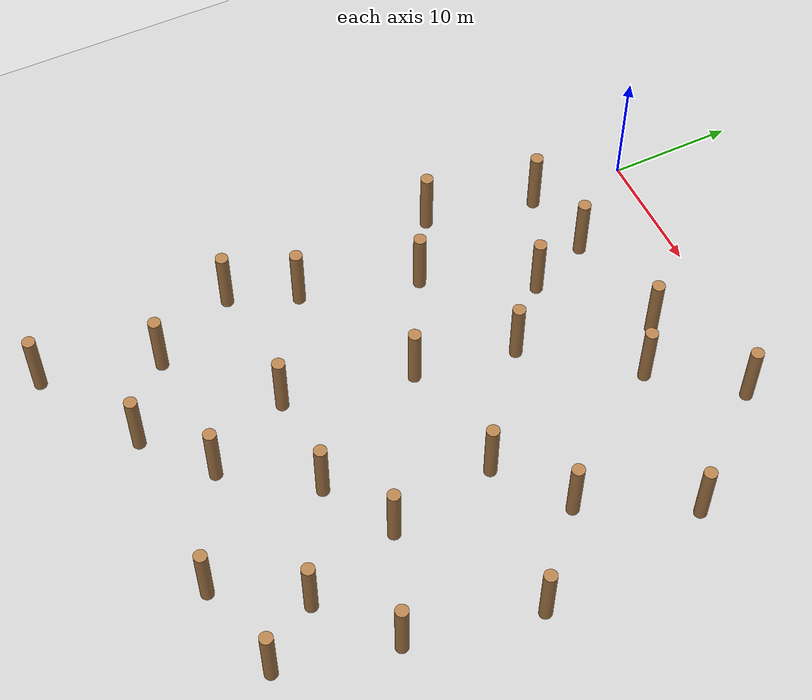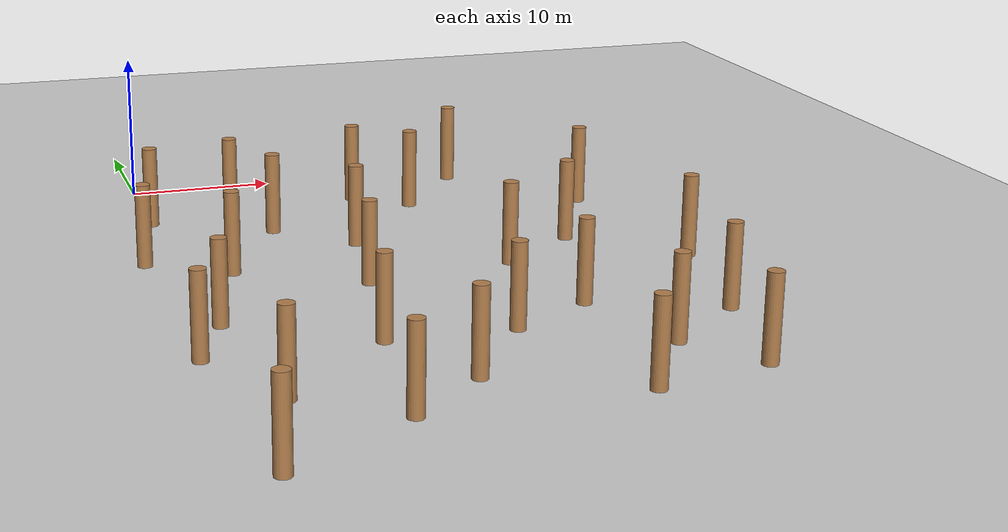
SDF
<sdf version="1.6">
 <world name="default">
  <model name="ground_plane">
   <static>1</static>
   <link name="link">
    <collision name="collision">
     <geometry><plane><normal>0 0 1</normal><size>100 100</size></plane></geometry>
     <surface><friction><ode><mu>100</mu><mu2>50</mu2></ode></friction></surface>
    </collision>
    <visual name="visual">
     <cast_shadows>0</cast_shadows>
     <geometry><plane><normal>0 0 1</normal><size>100 100</size></plane></geometry>
     <material>
      <script><uri>file://media/materials/scripts/gazebo.material</uri><name>Gazebo/Grey</name></script>
     </material>
    </visual>
   </link>
  </model>
  <model name="WoodPillars_8">
   <link name="link_clone_31">
    <inertial>
     <mass>1</mass>
     <inertia><ixx>0.145833</ixx><ixy>0</ixy><ixz>0</ixz><iyy>0.145833</iyy><iyz>0</iyz><izz>0.125</izz></inertia>
    </inertial>
    <pose>-1.44135 19.9016 0 0 -0 -0.001289</pose>
    <visual name="visual">
     <geometry><cylinder><radius>0.5</radius><length>5.50507</length></cylinder></geometry>
     <material>
      <script><name>Gazebo/Wood</name><uri>file://media/materials/scripts/gazebo.material</uri></script>
      <shader type="pixel"/>
     </material>
    </visual>
    <collision name="collision">
     <geometry><cylinder><radius>0.5</radius><length>5.50507</length></cylinder></geometry>
     <surface>
      <friction>
       <ode><mu>1</mu><mu2>1</mu2><fdir1>0 0 0</fdir1><slip1>0</slip1><slip2>0</slip2></ode>
       <torsional>
        <coefficient>1</coefficient>
        <patch_radius>0</patch_radius>
        <surface_radius>0</surface_radius>
        <use_patch_radius>1</use_patch_radius>
        <ode><slip>0</slip></ode>
       </torsional>
      </friction>
      <bounce><restitution_coefficient>0</restitution_coefficient><threshold>1e+06</threshold></bounce>
      <contact>
       <collide_without_contact>0</collide_without_contact>
       <collide_without_contact_bitmask>1</collide_without_contact_bitmask>
       <collide_bitmask>1</collide_bitmask>
       <ode>
        <soft_cfm>0</soft_cfm>
        <soft_erp>0.2</soft_erp>
        <kp>1e+13</kp>
        <kd>1</kd>
        <max_vel>0.01</max_vel>
        <min_depth>0</min_depth>
       </ode>
       <bullet>
        <split_impulse>1</split_impulse>
        <split_impulse_penetration_threshold>-0.01</split_impulse_penetration_threshold>
        <soft_cfm>0</soft_cfm>
        <soft_erp>0.2</soft_erp>
        <kp>1e+13</kp>
        <kd>1</kd>
       </bullet>
      </contact>
     </surface>
    </collision>
   </link>
   <static>0</static>
   <pose>1.10151 -69.5089 2.75253 0 -0 0.001606</pose>
  </model>
  <model name="WoodPillars_7">
   <link name="link">
    <inertial>
     <mass>1</mass>
     <inertia><ixx>0.145833</ixx><ixy>0</ixy><ixz>0</ixz><iyy>0.145833</iyy><iyz>0</iyz><izz>0.125</izz></inertia>
    </inertial>
    <visual name="visual">
     <geometry><cylinder><radius>0.5</radius><length>5.50507</length></cylinder></geometry>
     <material>
      <script><name>Gazebo/Wood</name><uri>file://media/materials/scripts/gazebo.material</uri></script>
     </material>
    </visual>
    <collision name="collision">
     <geometry><cylinder><radius>0.5</radius><length>5.50507</length></cylinder></geometry>
     <surface>
      <friction>
       <ode><mu>1</mu><mu2>1</mu2><fdir1>0 0 0</fdir1><slip1>0</slip1><slip2>0</slip2></ode>
       <torsional>
        <coefficient>1</coefficient>
        <patch_radius>0</patch_radius>
        <surface_radius>0</surface_radius>
        <use_patch_radius>1</use_patch_radius>
        <ode><slip>0</slip></ode>
       </torsional>
      </friction>
      <bounce><restitution_coefficient>0</restitution_coefficient><threshold>1e+06</threshold></bounce>
      <contact>
       <collide_without_contact>0</collide_without_contact>
       <collide_without_contact_bitmask>1</collide_without_contact_bitmask>
       <collide_bitmask>1</collide_bitmask>
       <ode>
        <soft_cfm>0</soft_cfm>
        <soft_erp>0.2</soft_erp>
        <kp>1e+13</kp>
        <kd>1</kd>
        <max_vel>0.01</max_vel>
        <min_depth>0</min_depth>
       </ode>
       <bullet>
        <split_impulse>1</split_impulse>
        <split_impulse_penetration_threshold>-0.01</split_impulse_penetration_threshold>
        <soft_cfm>0</soft_cfm>
        <soft_erp>0.2</soft_erp>
        <kp>1e+13</kp>
        <kd>1</kd>
       </bullet>
      </contact>
     </surface>
    </collision>
   </link>
   <link name="link_clone">
    <inertial>
     <mass>1</mass>
     <inertia><ixx>0.145833</ixx><ixy>0</ixy><ixz>0</ixz><iyy>0.145833</iyy><iyz>0</iyz><izz>0.125</izz></inertia>
    </inertial>
    <pose>17.6954 -2.91348 -2e-06 0 -0 -0.001289</pose>
    <visual name="visual">
     <geometry><cylinder><radius>0.5</radius><length>5.50507</length></cylinder></geometry>
     <material>
      <script><name>Gazebo/Wood</name><uri>file://media/materials/scripts/gazebo.material</uri></script>
      <shader type="pixel"/>
     </material>
    </visual>
    <collision name="collision">
     <geometry><cylinder><radius>0.5</radius><length>5.50507</length></cylinder></geometry>
     <surface>
      <friction>
       <ode><mu>1</mu><mu2>1</mu2><fdir1>0 0 0</fdir1><slip1>0</slip1><slip2>0</slip2></ode>
       <torsional>
        <coefficient>1</coefficient>
        <patch_radius>0</patch_radius>
        <surface_radius>0</surface_radius>
        <use_patch_radius>1</use_patch_radius>
        <ode><slip>0</slip></ode>
       </torsional>
      </friction>
      <bounce><restitution_coefficient>0</restitution_coefficient><threshold>1e+06</threshold></bounce>
      <contact>
       <collide_without_contact>0</collide_without_contact>
       <collide_without_contact_bitmask>1</collide_without_contact_bitmask>
       <collide_bitmask>1</collide_bitmask>
       <ode>
        <soft_cfm>0</soft_cfm>
        <soft_erp>0.2</soft_erp>
        <kp>1e+13</kp>
        <kd>1</kd>
        <max_vel>0.01</max_vel>
        <min_depth>0</min_depth>
       </ode>
       <bullet>
        <split_impulse>1</split_impulse>
        <split_impulse_penetration_threshold>-0.01</split_impulse_penetration_threshold>
        <soft_cfm>0</soft_cfm>
        <soft_erp>0.2</soft_erp>
        <kp>1e+13</kp>
        <kd>1</kd>
       </bullet>
      </contact>
     </surface>
    </collision>
   </link>
   <link name="link_clone_10">
    <inertial>
     <mass>1</mass>
     <inertia><ixx>0.145833</ixx><ixy>0</ixy><ixz>0</ixz><iyy>0.145833</iyy><iyz>0</iyz><izz>0.125</izz></inertia>
    </inertial>
    <pose>2.50237 12.8939 0 0 -0 -0.001289</pose>
    <visual name="visual">
     <geometry><cylinder><radius>0.5</radius><length>5.50507</length></cylinder></geometry>
     <material>
      <script><name>Gazebo/Wood</name><uri>file://media/materials/scripts/gazebo.material</uri></script>
      <shader type="pixel"/>
     </material>
    </visual>
    <collision name="collision">
     <geometry><cylinder><radius>0.5</radius><length>5.50507</length></cylinder></geometry>
     <surface>
      <friction>
       <ode><mu>1</mu><mu2>1</mu2><fdir1>0 0 0</fdir1><slip1>0</slip1><slip2>0</slip2></ode>
       <torsional>
        <coefficient>1</coefficient>
        <patch_radius>0</patch_radius>
        <surface_radius>0</surface_radius>
        <use_patch_radius>1</use_patch_radius>
        <ode><slip>0</slip></ode>
       </torsional>
      </friction>
      <bounce><restitution_coefficient>0</restitution_coefficient><threshold>1e+06</threshold></bounce>
      <contact>
       <collide_without_contact>0</collide_without_contact>
       <collide_without_contact_bitmask>1</collide_without_contact_bitmask>
       <collide_bitmask>1</collide_bitmask>
       <ode>
        <soft_cfm>0</soft_cfm>
        <soft_erp>0.2</soft_erp>
        <kp>1e+13</kp>
        <kd>1</kd>
        <max_vel>0.01</max_vel>
        <min_depth>0</min_depth>
       </ode>
       <bullet>
        <split_impulse>1</split_impulse>
        <split_impulse_penetration_threshold>-0.01</split_impulse_penetration_threshold>
        <soft_cfm>0</soft_cfm>
        <soft_erp>0.2</soft_erp>
        <kp>1e+13</kp>
        <kd>1</kd>
       </bullet>
      </contact>
     </surface>
    </collision>
   </link>
   <link name="link_clone_11">
    <inertial>
     <mass>1</mass>
     <inertia><ixx>0.145833</ixx><ixy>0</ixy><ixz>0</ixz><iyy>0.145833</iyy><iyz>0</iyz><izz>0.125</izz></inertia>
    </inertial>
    <pose>20.1245 17.4079 -2e-06 0 -0 -0.001289</pose>
    <visual name="visual">
     <geometry><cylinder><radius>0.5</radius><length>5.50507</length></cylinder></geometry>
     <material>
      <script><name>Gazebo/Wood</name><uri>file://media/materials/scripts/gazebo.material</uri></script>
      <shader type="pixel"/>
     </material>
    </visual>
    <collision name="collision">
     <geometry><cylinder><radius>0.5</radius><length>5.50507</length></cylinder></geometry>
     <surface>
      <friction>
       <ode><mu>1</mu><mu2>1</mu2><fdir1>0 0 0</fdir1><slip1>0</slip1><slip2>0</slip2></ode>
       <torsional>
        <coefficient>1</coefficient>
        <patch_radius>0</patch_radius>
        <surface_radius>0</surface_radius>
        <use_patch_radius>1</use_patch_radius>
        <ode><slip>0</slip></ode>
       </torsional>
      </friction>
      <bounce><restitution_coefficient>0</restitution_coefficient><threshold>1e+06</threshold></bounce>
      <contact>
       <collide_without_contact>0</collide_without_contact>
       <collide_without_contact_bitmask>1</collide_without_contact_bitmask>
       <collide_bitmask>1</collide_bitmask>
       <ode>
        <soft_cfm>0</soft_cfm>
        <soft_erp>0.2</soft_erp>
        <kp>1e+13</kp>
        <kd>1</kd>
        <max_vel>0.01</max_vel>
        <min_depth>0</min_depth>
       </ode>
       <bullet>
        <split_impulse>1</split_impulse>
        <split_impulse_penetration_threshold>-0.01</split_impulse_penetration_threshold>
        <soft_cfm>0</soft_cfm>
        <soft_erp>0.2</soft_erp>
        <kp>1e+13</kp>
        <kd>1</kd>
       </bullet>
      </contact>
     </surface>
    </collision>
   </link>
   <link name="link_clone_14">
    <inertial>
     <mass>1</mass>
     <inertia><ixx>0.145833</ixx><ixy>0</ixy><ixz>0</ixz><iyy>0.145833</iyy><iyz>0</iyz><izz>0.125</izz></inertia>
    </inertial>
    <pose>9.31461 -20.9997 -1e-06 0 -0 -0.001289</pose>
    <visual name="visual">
     <geometry><cylinder><radius>0.5</radius><length>5.50507</length></cylinder></geometry>
     <material>
      <script><name>Gazebo/Wood</name><uri>file://media/materials/scripts/gazebo.material</uri></script>
      <shader type="pixel"/>
     </material>
    </visual>
    <collision name="collision">
     <geometry><cylinder><radius>0.5</radius><length>5.50507</length></cylinder></geometry>
     <surface>
      <friction>
       <ode><mu>1</mu><mu2>1</mu2><fdir1>0 0 0</fdir1><slip1>0</slip1><slip2>0</slip2></ode>
       <torsional>
        <coefficient>1</coefficient>
        <patch_radius>0</patch_radius>
        <surface_radius>0</surface_radius>
        <use_patch_radius>1</use_patch_radius>
        <ode><slip>0</slip></ode>
       </torsional>
      </friction>
      <bounce><restitution_coefficient>0</restitution_coefficient><threshold>1e+06</threshold></bounce>
      <contact>
       <collide_without_contact>0</collide_without_contact>
       <collide_without_contact_bitmask>1</collide_without_contact_bitmask>
       <collide_bitmask>1</collide_bitmask>
       <ode>
        <soft_cfm>0</soft_cfm>
        <soft_erp>0.2</soft_erp>
        <kp>1e+13</kp>
        <kd>1</kd>
        <max_vel>0.01</max_vel>
        <min_depth>0</min_depth>
       </ode>
       <bullet>
        <split_impulse>1</split_impulse>
        <split_impulse_penetration_threshold>-0.01</split_impulse_penetration_threshold>
        <soft_cfm>0</soft_cfm>
        <soft_erp>0.2</soft_erp>
        <kp>1e+13</kp>
        <kd>1</kd>
       </bullet>
      </contact>
     </surface>
    </collision>
   </link>
   <link name="link_clone_15">
    <inertial>
     <mass>1</mass>
     <inertia><ixx>0.145833</ixx><ixy>0</ixy><ixz>0</ixz><iyy>0.145833</iyy><iyz>0</iyz><izz>0.125</izz></inertia>
    </inertial>
    <pose>17.9894 -25.1945 -2e-06 0 -0 -0.001289</pose>
    <visual name="visual">
     <geometry><cylinder><radius>0.5</radius><length>5.50507</length></cylinder></geometry>
     <material>
      <script><name>Gazebo/Wood</name><uri>file://media/materials/scripts/gazebo.material</uri></script>
      <shader type="pixel"/>
     </material>
    </visual>
    <collision name="collision">
     <geometry><cylinder><radius>0.5</radius><length>5.50507</length></cylinder></geometry>
     <surface>
      <friction>
       <ode><mu>1</mu><mu2>1</mu2><fdir1>0 0 0</fdir1><slip1>0</slip1><slip2>0</slip2></ode>
       <torsional>
        <coefficient>1</coefficient>
        <patch_radius>0</patch_radius>
        <surface_radius>0</surface_radius>
        <use_patch_radius>1</use_patch_radius>
        <ode><slip>0</slip></ode>
       </torsional>
      </friction>
      <bounce><restitution_coefficient>0</restitution_coefficient><threshold>1e+06</threshold></bounce>
      <contact>
       <collide_without_contact>0</collide_without_contact>
       <collide_without_contact_bitmask>1</collide_without_contact_bitmask>
       <collide_bitmask>1</collide_bitmask>
       <ode>
        <soft_cfm>0</soft_cfm>
        <soft_erp>0.2</soft_erp>
        <kp>1e+13</kp>
        <kd>1</kd>
        <max_vel>0.01</max_vel>
        <min_depth>0</min_depth>
       </ode>
       <bullet>
        <split_impulse>1</split_impulse>
        <split_impulse_penetration_threshold>-0.01</split_impulse_penetration_threshold>
        <soft_cfm>0</soft_cfm>
        <soft_erp>0.2</soft_erp>
        <kp>1e+13</kp>
        <kd>1</kd>
       </bullet>
      </contact>
     </surface>
    </collision>
   </link>
   <link name="link_clone_17">
    <inertial>
     <mass>1</mass>
     <inertia><ixx>0.145833</ixx><ixy>0</ixy><ixz>0</ixz><iyy>0.145833</iyy><iyz>0</iyz><izz>0.125</izz></inertia>
    </inertial>
    <pose>19.3784 -11.4604 -2e-06 0 -0 -0.001289</pose>
    <visual name="visual">
     <geometry><cylinder><radius>0.5</radius><length>5.50507</length></cylinder></geometry>
     <material>
      <script><name>Gazebo/Wood</name><uri>file://media/materials/scripts/gazebo.material</uri></script>
      <shader type="pixel"/>
     </material>
    </visual>
    <collision name="collision">
     <geometry><cylinder><radius>0.5</radius><length>5.50507</length></cylinder></geometry>
     <surface>
      <friction>
       <ode><mu>1</mu><mu2>1</mu2><fdir1>0 0 0</fdir1><slip1>0</slip1><slip2>0</slip2></ode>
       <torsional>
        <coefficient>1</coefficient>
        <patch_radius>0</patch_radius>
        <surface_radius>0</surface_radius>
        <use_patch_radius>1</use_patch_radius>
        <ode><slip>0</slip></ode>
       </torsional>
      </friction>
      <bounce><restitution_coefficient>0</restitution_coefficient><threshold>1e+06</threshold></bounce>
      <contact>
       <collide_without_contact>0</collide_without_contact>
       <collide_without_contact_bitmask>1</collide_without_contact_bitmask>
       <collide_bitmask>1</collide_bitmask>
       <ode>
        <soft_cfm>0</soft_cfm>
        <soft_erp>0.2</soft_erp>
        <kp>1e+13</kp>
        <kd>1</kd>
        <max_vel>0.01</max_vel>
        <min_depth>0</min_depth>
       </ode>
       <bullet>
        <split_impulse>1</split_impulse>
        <split_impulse_penetration_threshold>-0.01</split_impulse_penetration_threshold>
        <soft_cfm>0</soft_cfm>
        <soft_erp>0.2</soft_erp>
        <kp>1e+13</kp>
        <kd>1</kd>
       </bullet>
      </contact>
     </surface>
    </collision>
   </link>
   <link name="link_clone_18">
    <inertial>
     <mass>1</mass>
     <inertia><ixx>0.145833</ixx><ixy>0</ixy><ixz>0</ixz><iyy>0.145833</iyy><iyz>0</iyz><izz>0.125</izz></inertia>
    </inertial>
    <pose>9.1573 3.67739 -1e-06 0 -0 -0.001289</pose>
    <visual name="visual">
     <geometry><cylinder><radius>0.5</radius><length>5.50507</length></cylinder></geometry>
     <material>
      <script><name>Gazebo/Wood</name><uri>file://media/materials/scripts/gazebo.material</uri></script>
      <shader type="pixel"/>
     </material>
    </visual>
    <collision name="collision">
     <geometry><cylinder><radius>0.5</radius><length>5.50507</length></cylinder></geometry>
     <surface>
      <friction>
       <ode><mu>1</mu><mu2>1</mu2><fdir1>0 0 0</fdir1><slip1>0</slip1><slip2>0</slip2></ode>
       <torsional>
        <coefficient>1</coefficient>
        <patch_radius>0</patch_radius>
        <surface_radius>0</surface_radius>
        <use_patch_radius>1</use_patch_radius>
        <ode><slip>0</slip></ode>
       </torsional>
      </friction>
      <bounce><restitution_coefficient>0</restitution_coefficient><threshold>1e+06</threshold></bounce>
      <contact>
       <collide_without_contact>0</collide_without_contact>
       <collide_without_contact_bitmask>1</collide_without_contact_bitmask>
       <collide_bitmask>1</collide_bitmask>
       <ode>
        <soft_cfm>0</soft_cfm>
        <soft_erp>0.2</soft_erp>
        <kp>1e+13</kp>
        <kd>1</kd>
        <max_vel>0.01</max_vel>
        <min_depth>0</min_depth>
       </ode>
       <bullet>
        <split_impulse>1</split_impulse>
        <split_impulse_penetration_threshold>-0.01</split_impulse_penetration_threshold>
        <soft_cfm>0</soft_cfm>
        <soft_erp>0.2</soft_erp>
        <kp>1e+13</kp>
        <kd>1</kd>
       </bullet>
      </contact>
     </surface>
    </collision>
   </link>
   <link name="link_clone_19">
    <inertial>
     <mass>1</mass>
     <inertia><ixx>0.145833</ixx><ixy>0</ixy><ixz>0</ixz><iyy>0.145833</iyy><iyz>0</iyz><izz>0.125</izz></inertia>
    </inertial>
    <pose>-3.28611 11.8265 -0 0 -0 -0.001289</pose>
    <visual name="visual">
     <geometry><cylinder><radius>0.5</radius><length>5.50507</length></cylinder></geometry>
     <material>
      <script><name>Gazebo/Wood</name><uri>file://media/materials/scripts/gazebo.material</uri></script>
      <shader type="pixel"/>
     </material>
    </visual>
    <collision name="collision">
     <geometry><cylinder><radius>0.5</radius><length>5.50507</length></cylinder></geometry>
     <surface>
      <friction>
       <ode><mu>1</mu><mu2>1</mu2><fdir1>0 0 0</fdir1><slip1>0</slip1><slip2>0</slip2></ode>
       <torsional>
        <coefficient>1</coefficient>
        <patch_radius>0</patch_radius>
        <surface_radius>0</surface_radius>
        <use_patch_radius>1</use_patch_radius>
        <ode><slip>0</slip></ode>
       </torsional>
      </friction>
      <bounce><restitution_coefficient>0</restitution_coefficient><threshold>1e+06</threshold></bounce>
      <contact>
       <collide_without_contact>0</collide_without_contact>
       <collide_without_contact_bitmask>1</collide_without_contact_bitmask>
       <collide_bitmask>1</collide_bitmask>
       <ode>
        <soft_cfm>0</soft_cfm>
        <soft_erp>0.2</soft_erp>
        <kp>1e+13</kp>
        <kd>1</kd>
        <max_vel>0.01</max_vel>
        <min_depth>0</min_depth>
       </ode>
       <bullet>
        <split_impulse>1</split_impulse>
        <split_impulse_penetration_threshold>-0.01</split_impulse_penetration_threshold>
        <soft_cfm>0</soft_cfm>
        <soft_erp>0.2</soft_erp>
        <kp>1e+13</kp>
        <kd>1</kd>
       </bullet>
      </contact>
     </surface>
    </collision>
   </link>
   <link name="link_clone_20">
    <inertial>
     <mass>1</mass>
     <inertia><ixx>0.145833</ixx><ixy>0</ixy><ixz>0</ixz><iyy>0.145833</iyy><iyz>0</iyz><izz>0.125</izz></inertia>
    </inertial>
    <pose>-2.64423 -9.12396 -0 0 -0 -0.001289</pose>
    <visual name="visual">
     <geometry><cylinder><radius>0.5</radius><length>5.50507</length></cylinder></geometry>
     <material>
      <script><name>Gazebo/Wood</name><uri>file://media/materials/scripts/gazebo.material</uri></script>
      <shader type="pixel"/>
     </material>
    </visual>
    <collision name="collision">
     <geometry><cylinder><radius>0.5</radius><length>5.50507</length></cylinder></geometry>
     <surface>
      <friction>
       <ode><mu>1</mu><mu2>1</mu2><fdir1>0 0 0</fdir1><slip1>0</slip1><slip2>0</slip2></ode>
       <torsional>
        <coefficient>1</coefficient>
        <patch_radius>0</patch_radius>
        <surface_radius>0</surface_radius>
        <use_patch_radius>1</use_patch_radius>
        <ode><slip>0</slip></ode>
       </torsional>
      </friction>
      <bounce><restitution_coefficient>0</restitution_coefficient><threshold>1e+06</threshold></bounce>
      <contact>
       <collide_without_contact>0</collide_without_contact>
       <collide_without_contact_bitmask>1</collide_without_contact_bitmask>
       <collide_bitmask>1</collide_bitmask>
       <ode>
        <soft_cfm>0</soft_cfm>
        <soft_erp>0.2</soft_erp>
        <kp>1e+13</kp>
        <kd>1</kd>
        <max_vel>0.01</max_vel>
        <min_depth>0</min_depth>
       </ode>
       <bullet>
        <split_impulse>1</split_impulse>
        <split_impulse_penetration_threshold>-0.01</split_impulse_penetration_threshold>
        <soft_cfm>0</soft_cfm>
        <soft_erp>0.2</soft_erp>
        <kp>1e+13</kp>
        <kd>1</kd>
       </bullet>
      </contact>
     </surface>
    </collision>
   </link>
   <link name="link_clone_21">
    <inertial>
     <mass>1</mass>
     <inertia><ixx>0.145833</ixx><ixy>0</ixy><ixz>0</ixz><iyy>0.145833</iyy><iyz>0</iyz><izz>0.125</izz></inertia>
    </inertial>
    <pose>15.2748 11.406 -1e-06 0 -0 -0.001289</pose>
    <visual name="visual">
     <geometry><cylinder><radius>0.5</radius><length>5.50507</length></cylinder></geometry>
     <material>
      <script><name>Gazebo/Wood</name><uri>file://media/materials/scripts/gazebo.material</uri></script>
      <shader type="pixel"/>
     </material>
    </visual>
    <collision name="collision">
     <geometry><cylinder><radius>0.5</radius><length>5.50507</length></cylinder></geometry>
     <surface>
      <friction>
       <ode><mu>1</mu><mu2>1</mu2><fdir1>0 0 0</fdir1><slip1>0</slip1><slip2>0</slip2></ode>
       <torsional>
        <coefficient>1</coefficient>
        <patch_radius>0</patch_radius>
        <surface_radius>0</surface_radius>
        <use_patch_radius>1</use_patch_radius>
        <ode><slip>0</slip></ode>
       </torsional>
      </friction>
      <bounce><restitution_coefficient>0</restitution_coefficient><threshold>1e+06</threshold></bounce>
      <contact>
       <collide_without_contact>0</collide_without_contact>
       <collide_without_contact_bitmask>1</collide_without_contact_bitmask>
       <collide_bitmask>1</collide_bitmask>
       <ode>
        <soft_cfm>0</soft_cfm>
        <soft_erp>0.2</soft_erp>
        <kp>1e+13</kp>
        <kd>1</kd>
        <max_vel>0.01</max_vel>
        <min_depth>0</min_depth>
       </ode>
       <bullet>
        <split_impulse>1</split_impulse>
        <split_impulse_penetration_threshold>-0.01</split_impulse_penetration_threshold>
        <soft_cfm>0</soft_cfm>
        <soft_erp>0.2</soft_erp>
        <kp>1e+13</kp>
        <kd>1</kd>
       </bullet>
      </contact>
     </surface>
    </collision>
   </link>
   <link name="link_clone_22">
    <inertial>
     <mass>1</mass>
     <inertia><ixx>0.145833</ixx><ixy>0</ixy><ixz>0</ixz><iyy>0.145833</iyy><iyz>0</iyz><izz>0.125</izz></inertia>
    </inertial>
    <pose>27.313 9.05961 -2e-06 0 -0 -0.001289</pose>
    <visual name="visual">
     <geometry><cylinder><radius>0.5</radius><length>5.50507</length></cylinder></geometry>
     <material>
      <script><name>Gazebo/Wood</name><uri>file://media/materials/scripts/gazebo.material</uri></script>
      <shader type="pixel"/>
     </material>
    </visual>
    <collision name="collision">
     <geometry><cylinder><radius>0.5</radius><length>5.50507</length></cylinder></geometry>
     <surface>
      <friction>
       <ode><mu>1</mu><mu2>1</mu2><fdir1>0 0 0</fdir1><slip1>0</slip1><slip2>0</slip2></ode>
       <torsional>
        <coefficient>1</coefficient>
        <patch_radius>0</patch_radius>
        <surface_radius>0</surface_radius>
        <use_patch_radius>1</use_patch_radius>
        <ode><slip>0</slip></ode>
       </torsional>
      </friction>
      <bounce><restitution_coefficient>0</restitution_coefficient><threshold>1e+06</threshold></bounce>
      <contact>
       <collide_without_contact>0</collide_without_contact>
       <collide_without_contact_bitmask>1</collide_without_contact_bitmask>
       <collide_bitmask>1</collide_bitmask>
       <ode>
        <soft_cfm>0</soft_cfm>
        <soft_erp>0.2</soft_erp>
        <kp>1e+13</kp>
        <kd>1</kd>
        <max_vel>0.01</max_vel>
        <min_depth>0</min_depth>
       </ode>
       <bullet>
        <split_impulse>1</split_impulse>
        <split_impulse_penetration_threshold>-0.01</split_impulse_penetration_threshold>
        <soft_cfm>0</soft_cfm>
        <soft_erp>0.2</soft_erp>
        <kp>1e+13</kp>
        <kd>1</kd>
       </bullet>
      </contact>
     </surface>
    </collision>
   </link>
   <link name="link_clone_23">
    <inertial>
     <mass>1</mass>
     <inertia><ixx>0.145833</ixx><ixy>0</ixy><ixz>0</ixz><iyy>0.145833</iyy><iyz>0</iyz><izz>0.125</izz></inertia>
    </inertial>
    <pose>29.5176 -4.71623 -3e-06 0 -0 -0.001289</pose>
    <visual name="visual">
     <geometry><cylinder><radius>0.5</radius><length>5.50507</length></cylinder></geometry>
     <material>
      <script><name>Gazebo/Wood</name><uri>file://media/materials/scripts/gazebo.material</uri></script>
      <shader type="pixel"/>
     </material>
    </visual>
    <collision name="collision">
     <geometry><cylinder><radius>0.5</radius><length>5.50507</length></cylinder></geometry>
     <surface>
      <friction>
       <ode><mu>1</mu><mu2>1</mu2><fdir1>0 0 0</fdir1><slip1>0</slip1><slip2>0</slip2></ode>
       <torsional>
        <coefficient>1</coefficient>
        <patch_radius>0</patch_radius>
        <surface_radius>0</surface_radius>
        <use_patch_radius>1</use_patch_radius>
        <ode><slip>0</slip></ode>
       </torsional>
      </friction>
      <bounce><restitution_coefficient>0</restitution_coefficient><threshold>1e+06</threshold></bounce>
      <contact>
       <collide_without_contact>0</collide_without_contact>
       <collide_without_contact_bitmask>1</collide_without_contact_bitmask>
       <collide_bitmask>1</collide_bitmask>
       <ode>
        <soft_cfm>0</soft_cfm>
        <soft_erp>0.2</soft_erp>
        <kp>1e+13</kp>
        <kd>1</kd>
        <max_vel>0.01</max_vel>
        <min_depth>0</min_depth>
       </ode>
       <bullet>
        <split_impulse>1</split_impulse>
        <split_impulse_penetration_threshold>-0.01</split_impulse_penetration_threshold>
        <soft_cfm>0</soft_cfm>
        <soft_erp>0.2</soft_erp>
        <kp>1e+13</kp>
        <kd>1</kd>
       </bullet>
      </contact>
     </surface>
    </collision>
   </link>
   <link name="link_clone_24">
    <inertial>
     <mass>1</mass>
     <inertia><ixx>0.145833</ixx><ixy>0</ixy><ixz>0</ixz><iyy>0.145833</iyy><iyz>0</iyz><izz>0.125</izz></inertia>
    </inertial>
    <pose>7.84688 -4.26113 -1e-06 0 -0 -0.001289</pose>
    <visual name="visual">
     <geometry><cylinder><radius>0.5</radius><length>5.50507</length></cylinder></geometry>
     <material>
      <script><name>Gazebo/Wood</name><uri>file://media/materials/scripts/gazebo.material</uri></script>
      <shader type="pixel"/>
     </material>
    </visual>
    <collision name="collision">
     <geometry><cylinder><radius>0.5</radius><length>5.50507</length></cylinder></geometry>
     <surface>
      <friction>
       <ode><mu>1</mu><mu2>1</mu2><fdir1>0 0 0</fdir1><slip1>0</slip1><slip2>0</slip2></ode>
       <torsional>
        <coefficient>1</coefficient>
        <patch_radius>0</patch_radius>
        <surface_radius>0</surface_radius>
        <use_patch_radius>1</use_patch_radius>
        <ode><slip>0</slip></ode>
       </torsional>
      </friction>
      <bounce><restitution_coefficient>0</restitution_coefficient><threshold>1e+06</threshold></bounce>
      <contact>
       <collide_without_contact>0</collide_without_contact>
       <collide_without_contact_bitmask>1</collide_without_contact_bitmask>
       <collide_bitmask>1</collide_bitmask>
       <ode>
        <soft_cfm>0</soft_cfm>
        <soft_erp>0.2</soft_erp>
        <kp>1e+13</kp>
        <kd>1</kd>
        <max_vel>0.01</max_vel>
        <min_depth>0</min_depth>
       </ode>
       <bullet>
        <split_impulse>1</split_impulse>
        <split_impulse_penetration_threshold>-0.01</split_impulse_penetration_threshold>
        <soft_cfm>0</soft_cfm>
        <soft_erp>0.2</soft_erp>
        <kp>1e+13</kp>
        <kd>1</kd>
       </bullet>
      </contact>
     </surface>
    </collision>
   </link>
   <link name="link_clone_25">
    <inertial>
     <mass>1</mass>
     <inertia><ixx>0.145833</ixx><ixy>0</ixy><ixz>0</ixz><iyy>0.145833</iyy><iyz>0</iyz><izz>0.125</izz></inertia>
    </inertial>
    <pose>11.7271 14.0632 -1e-06 0 -0 -0.001289</pose>
    <visual name="visual">
     <geometry><cylinder><radius>0.5</radius><length>5.50507</length></cylinder></geometry>
     <material>
      <script><name>Gazebo/Wood</name><uri>file://media/materials/scripts/gazebo.material</uri></script>
      <shader type="pixel"/>
     </material>
    </visual>
    <collision name="collision">
     <geometry><cylinder><radius>0.5</radius><length>5.50507</length></cylinder></geometry>
     <surface>
      <friction>
       <ode><mu>1</mu><mu2>1</mu2><fdir1>0 0 0</fdir1><slip1>0</slip1><slip2>0</slip2></ode>
       <torsional>
        <coefficient>1</coefficient>
        <patch_radius>0</patch_radius>
        <surface_radius>0</surface_radius>
        <use_patch_radius>1</use_patch_radius>
        <ode><slip>0</slip></ode>
       </torsional>
      </friction>
      <bounce><restitution_coefficient>0</restitution_coefficient><threshold>1e+06</threshold></bounce>
      <contact>
       <collide_without_contact>0</collide_without_contact>
       <collide_without_contact_bitmask>1</collide_without_contact_bitmask>
       <collide_bitmask>1</collide_bitmask>
       <ode>
        <soft_cfm>0</soft_cfm>
        <soft_erp>0.2</soft_erp>
        <kp>1e+13</kp>
        <kd>1</kd>
        <max_vel>0.01</max_vel>
        <min_depth>0</min_depth>
       </ode>
       <bullet>
        <split_impulse>1</split_impulse>
        <split_impulse_penetration_threshold>-0.01</split_impulse_penetration_threshold>
        <soft_cfm>0</soft_cfm>
        <soft_erp>0.2</soft_erp>
        <kp>1e+13</kp>
        <kd>1</kd>
       </bullet>
      </contact>
     </surface>
    </collision>
   </link>
   <link name="link_clone_26">
    <inertial>
     <mass>1</mass>
     <inertia><ixx>0.145833</ixx><ixy>0</ixy><ixz>0</ixz><iyy>0.145833</iyy><iyz>0</iyz><izz>0.125</izz></inertia>
    </inertial>
    <pose>13.9187 -14.5508 -1e-06 0 -0 -0.001289</pose>
    <visual name="visual">
     <geometry><cylinder><radius>0.5</radius><length>5.50507</length></cylinder></geometry>
     <material>
      <script><name>Gazebo/Wood</name><uri>file://media/materials/scripts/gazebo.material</uri></script>
      <shader type="pixel"/>
     </material>
    </visual>
    <collision name="collision">
     <geometry><cylinder><radius>0.5</radius><length>5.50507</length></cylinder></geometry>
     <surface>
      <friction>
       <ode><mu>1</mu><mu2>1</mu2><fdir1>0 0 0</fdir1><slip1>0</slip1><slip2>0</slip2></ode>
       <torsional>
        <coefficient>1</coefficient>
        <patch_radius>0</patch_radius>
        <surface_radius>0</surface_radius>
        <use_patch_radius>1</use_patch_radius>
        <ode><slip>0</slip></ode>
       </torsional>
      </friction>
      <bounce><restitution_coefficient>0</restitution_coefficient><threshold>1e+06</threshold></bounce>
      <contact>
       <collide_without_contact>0</collide_without_contact>
       <collide_without_contact_bitmask>1</collide_without_contact_bitmask>
       <collide_bitmask>1</collide_bitmask>
       <ode>
        <soft_cfm>0</soft_cfm>
        <soft_erp>0.2</soft_erp>
        <kp>1e+13</kp>
        <kd>1</kd>
        <max_vel>0.01</max_vel>
        <min_depth>0</min_depth>
       </ode>
       <bullet>
        <split_impulse>1</split_impulse>
        <split_impulse_penetration_threshold>-0.01</split_impulse_penetration_threshold>
        <soft_cfm>0</soft_cfm>
        <soft_erp>0.2</soft_erp>
        <kp>1e+13</kp>
        <kd>1</kd>
       </bullet>
      </contact>
     </surface>
    </collision>
   </link>
   <link name="link_clone_27">
    <inertial>
     <mass>1</mass>
     <inertia><ixx>0.145833</ixx><ixy>0</ixy><ixz>0</ixz><iyy>0.145833</iyy><iyz>0</iyz><izz>0.125</izz></inertia>
    </inertial>
    <pose>4.38632 -25.0605 -1e-06 0 -0 -0.001289</pose>
    <visual name="visual">
     <geometry><cylinder><radius>0.5</radius><length>5.50507</length></cylinder></geometry>
     <material>
      <script><name>Gazebo/Wood</name><uri>file://media/materials/scripts/gazebo.material</uri></script>
      <shader type="pixel"/>
     </material>
    </visual>
    <collision name="collision">
     <geometry><cylinder><radius>0.5</radius><length>5.50507</length></cylinder></geometry>
     <surface>
      <friction>
       <ode><mu>1</mu><mu2>1</mu2><fdir1>0 0 0</fdir1><slip1>0</slip1><slip2>0</slip2></ode>
       <torsional>
        <coefficient>1</coefficient>
        <patch_radius>0</patch_radius>
        <surface_radius>0</surface_radius>
        <use_patch_radius>1</use_patch_radius>
        <ode><slip>0</slip></ode>
       </torsional>
      </friction>
      <bounce><restitution_coefficient>0</restitution_coefficient><threshold>1e+06</threshold></bounce>
      <contact>
       <collide_without_contact>0</collide_without_contact>
       <collide_without_contact_bitmask>1</collide_without_contact_bitmask>
       <collide_bitmask>1</collide_bitmask>
       <ode>
        <soft_cfm>0</soft_cfm>
        <soft_erp>0.2</soft_erp>
        <kp>1e+13</kp>
        <kd>1</kd>
        <max_vel>0.01</max_vel>
        <min_depth>0</min_depth>
       </ode>
       <bullet>
        <split_impulse>1</split_impulse>
        <split_impulse_penetration_threshold>-0.01</split_impulse_penetration_threshold>
        <soft_cfm>0</soft_cfm>
        <soft_erp>0.2</soft_erp>
        <kp>1e+13</kp>
        <kd>1</kd>
       </bullet>
      </contact>
     </surface>
    </collision>
   </link>
   <link name="link_clone_28">
    <inertial>
     <mass>1</mass>
     <inertia><ixx>0.145833</ixx><ixy>0</ixy><ixz>0</ixz><iyy>0.145833</iyy><iyz>0</iyz><izz>0.125</izz></inertia>
    </inertial>
    <pose>27.5353 -14.766 -3e-06 0 -0 -0.001289</pose>
    <visual name="visual">
     <geometry><cylinder><radius>0.5</radius><length>5.50507</length></cylinder></geometry>
     <material>
      <script><name>Gazebo/Wood</name><uri>file://media/materials/scripts/gazebo.material</uri></script>
      <shader type="pixel"/>
     </material>
    </visual>
    <collision name="collision">
     <geometry><cylinder><radius>0.5</radius><length>5.50507</length></cylinder></geometry>
     <surface>
      <friction>
       <ode><mu>1</mu><mu2>1</mu2><fdir1>0 0 0</fdir1><slip1>0</slip1><slip2>0</slip2></ode>
       <torsional>
        <coefficient>1</coefficient>
        <patch_radius>0</patch_radius>
        <surface_radius>0</surface_radius>
        <use_patch_radius>1</use_patch_radius>
        <ode><slip>0</slip></ode>
       </torsional>
      </friction>
      <bounce><restitution_coefficient>0</restitution_coefficient><threshold>1e+06</threshold></bounce>
      <contact>
       <collide_without_contact>0</collide_without_contact>
       <collide_without_contact_bitmask>1</collide_without_contact_bitmask>
       <collide_bitmask>1</collide_bitmask>
       <ode>
        <soft_cfm>0</soft_cfm>
        <soft_erp>0.2</soft_erp>
        <kp>1e+13</kp>
        <kd>1</kd>
        <max_vel>0.01</max_vel>
        <min_depth>0</min_depth>
       </ode>
       <bullet>
        <split_impulse>1</split_impulse>
        <split_impulse_penetration_threshold>-0.01</split_impulse_penetration_threshold>
        <soft_cfm>0</soft_cfm>
        <soft_erp>0.2</soft_erp>
        <kp>1e+13</kp>
        <kd>1</kd>
       </bullet>
      </contact>
     </surface>
    </collision>
   </link>
   <link name="link_clone_30">
    <inertial>
     <mass>1</mass>
     <inertia><ixx>0.145833</ixx><ixy>0</ixy><ixz>0</ixz><iyy>0.145833</iyy><iyz>0</iyz><izz>0.125</izz></inertia>
    </inertial>
    <pose>4.46339 7.97492 0 0 -0 -0.001289</pose>
    <visual name="visual">
     <geometry><cylinder><radius>0.5</radius><length>5.50507</length></cylinder></geometry>
     <material>
      <script><name>Gazebo/Wood</name><uri>file://media/materials/scripts/gazebo.material</uri></script>
      <shader type="pixel"/>
     </material>
    </visual>
    <collision name="collision">
     <geometry><cylinder><radius>0.5</radius><length>5.50507</length></cylinder></geometry>
     <surface>
      <friction>
       <ode><mu>1</mu><mu2>1</mu2><fdir1>0 0 0</fdir1><slip1>0</slip1><slip2>0</slip2></ode>
       <torsional>
        <coefficient>1</coefficient>
        <patch_radius>0</patch_radius>
        <surface_radius>0</surface_radius>
        <use_patch_radius>1</use_patch_radius>
        <ode><slip>0</slip></ode>
       </torsional>
      </friction>
      <bounce><restitution_coefficient>0</restitution_coefficient><threshold>1e+06</threshold></bounce>
      <contact>
       <collide_without_contact>0</collide_without_contact>
       <collide_without_contact_bitmask>1</collide_without_contact_bitmask>
       <collide_bitmask>1</collide_bitmask>
       <ode>
        <soft_cfm>0</soft_cfm>
        <soft_erp>0.2</soft_erp>
        <kp>1e+13</kp>
        <kd>1</kd>
        <max_vel>0.01</max_vel>
        <min_depth>0</min_depth>
       </ode>
       <bullet>
        <split_impulse>1</split_impulse>
        <split_impulse_penetration_threshold>-0.01</split_impulse_penetration_threshold>
        <soft_cfm>0</soft_cfm>
        <soft_erp>0.2</soft_erp>
        <kp>1e+13</kp>
        <kd>1</kd>
       </bullet>
      </contact>
     </surface>
    </collision>
   </link>
   <link name="link_clone_32">
    <inertial>
     <mass>1</mass>
     <inertia><ixx>0.145833</ixx><ixy>0</ixy><ixz>0</ixz><iyy>0.145833</iyy><iyz>0</iyz><izz>0.125</izz></inertia>
    </inertial>
    <pose>-4.82669 -14.2698 -0 0 -0 -0.001289</pose>
    <visual name="visual">
     <geometry><cylinder><radius>0.5</radius><length>5.50507</length></cylinder></geometry>
     <material>
      <script><name>Gazebo/Wood</name><uri>file://media/materials/scripts/gazebo.material</uri></script>
      <shader type="pixel"/>
     </material>
    </visual>
    <collision name="collision">
     <geometry><cylinder><radius>0.5</radius><length>5.50507</length></cylinder></geometry>
     <surface>
      <friction>
       <ode><mu>1</mu><mu2>1</mu2><fdir1>0 0 0</fdir1><slip1>0</slip1><slip2>0</slip2></ode>
       <torsional>
        <coefficient>1</coefficient>
        <patch_radius>0</patch_radius>
        <surface_radius>0</surface_radius>
        <use_patch_radius>1</use_patch_radius>
        <ode><slip>0</slip></ode>
       </torsional>
      </friction>
      <bounce><restitution_coefficient>0</restitution_coefficient><threshold>1e+06</threshold></bounce>
      <contact>
       <collide_without_contact>0</collide_without_contact>
       <collide_without_contact_bitmask>1</collide_without_contact_bitmask>
       <collide_bitmask>1</collide_bitmask>
       <ode>
        <soft_cfm>0</soft_cfm>
        <soft_erp>0.2</soft_erp>
        <kp>1e+13</kp>
        <kd>1</kd>
        <max_vel>0.01</max_vel>
        <min_depth>0</min_depth>
       </ode>
       <bullet>
        <split_impulse>1</split_impulse>
        <split_impulse_penetration_threshold>-0.01</split_impulse_penetration_threshold>
        <soft_cfm>0</soft_cfm>
        <soft_erp>0.2</soft_erp>
        <kp>1e+13</kp>
        <kd>1</kd>
       </bullet>
      </contact>
     </surface>
    </collision>
   </link>
   <link name="link_clone_34">
    <inertial>
     <mass>1</mass>
     <inertia><ixx>0.145833</ixx><ixy>0</ixy><ixz>0</ixz><iyy>0.145833</iyy><iyz>0</iyz><izz>0.125</izz></inertia>
    </inertial>
    <pose>25.4673 -23.5908 -3e-06 0 -0 -0.001289</pose>
    <visual name="visual">
     <geometry><cylinder><radius>0.5</radius><length>5.50507</length></cylinder></geometry>
     <material>
      <script><name>Gazebo/Wood</name><uri>file://media/materials/scripts/gazebo.material</uri></script>
      <shader type="pixel"/>
     </material>
    </visual>
    <collision name="collision">
     <geometry><cylinder><radius>0.5</radius><length>5.50507</length></cylinder></geometry>
     <surface>
      <friction>
       <ode><mu>1</mu><mu2>1</mu2><fdir1>0 0 0</fdir1><slip1>0</slip1><slip2>0</slip2></ode>
       <torsional>
        <coefficient>1</coefficient>
        <patch_radius>0</patch_radius>
        <surface_radius>0</surface_radius>
        <use_patch_radius>1</use_patch_radius>
        <ode><slip>0</slip></ode>
       </torsional>
      </friction>
      <bounce><restitution_coefficient>0</restitution_coefficient><threshold>1e+06</threshold></bounce>
      <contact>
       <collide_without_contact>0</collide_without_contact>
       <collide_without_contact_bitmask>1</collide_without_contact_bitmask>
       <collide_bitmask>1</collide_bitmask>
       <ode>
        <soft_cfm>0</soft_cfm>
        <soft_erp>0.2</soft_erp>
        <kp>1e+13</kp>
        <kd>1</kd>
        <max_vel>0.01</max_vel>
        <min_depth>0</min_depth>
       </ode>
       <bullet>
        <split_impulse>1</split_impulse>
        <split_impulse_penetration_threshold>-0.01</split_impulse_penetration_threshold>
        <soft_cfm>0</soft_cfm>
        <soft_erp>0.2</soft_erp>
        <kp>1e+13</kp>
        <kd>1</kd>
       </bullet>
      </contact>
     </surface>
    </collision>
   </link>
   <link name="link_clone_35">
    <inertial>
     <mass>1</mass>
     <inertia><ixx>0.145833</ixx><ixy>0</ixy><ixz>0</ixz><iyy>0.145833</iyy><iyz>0</iyz><izz>0.125</izz></inertia>
    </inertial>
    <pose>-5.14728 3.10998 -0 0 -0 -0.001289</pose>
    <visual name="visual">
     <geometry><cylinder><radius>0.5</radius><length>5.50507</length></cylinder></geometry>
     <material>
      <script><name>Gazebo/Wood</name><uri>file://media/materials/scripts/gazebo.material</uri></script>
      <shader type="pixel"/>
     </material>
    </visual>
    <collision name="collision">
     <geometry><cylinder><radius>0.5</radius><length>5.50507</length></cylinder></geometry>
     <surface>
      <friction>
       <ode><mu>1</mu><mu2>1</mu2><fdir1>0 0 0</fdir1><slip1>0</slip1><slip2>0</slip2></ode>
       <torsional>
        <coefficient>1</coefficient>
        <patch_radius>0</patch_radius>
        <surface_radius>0</surface_radius>
        <use_patch_radius>1</use_patch_radius>
        <ode><slip>0</slip></ode>
       </torsional>
      </friction>
      <bounce><restitution_coefficient>0</restitution_coefficient><threshold>1e+06</threshold></bounce>
      <contact>
       <collide_without_contact>0</collide_without_contact>
       <collide_without_contact_bitmask>1</collide_without_contact_bitmask>
       <collide_bitmask>1</collide_bitmask>
       <ode>
        <soft_cfm>0</soft_cfm>
        <soft_erp>0.2</soft_erp>
        <kp>1e+13</kp>
        <kd>1</kd>
        <max_vel>0.01</max_vel>
        <min_depth>0</min_depth>
       </ode>
       <bullet>
        <split_impulse>1</split_impulse>
        <split_impulse_penetration_threshold>-0.01</split_impulse_penetration_threshold>
        <soft_cfm>0</soft_cfm>
        <soft_erp>0.2</soft_erp>
        <kp>1e+13</kp>
        <kd>1</kd>
       </bullet>
      </contact>
     </surface>
    </collision>
   </link>
   <link name="link_clone_4">
    <inertial>
     <mass>1</mass>
     <inertia><ixx>0.145833</ixx><ixy>0</ixy><ixz>0</ixz><iyy>0.145833</iyy><iyz>0</iyz><izz>0.125</izz></inertia>
    </inertial>
    <pose>23.1128 0.93751 -2e-06 0 -0 -0.001289</pose>
    <visual name="visual">
     <geometry><cylinder><radius>0.5</radius><length>5.50507</length></cylinder></geometry>
     <material>
      <script><name>Gazebo/Wood</name><uri>file://media/materials/scripts/gazebo.material</uri></script>
      <shader type="pixel"/>
     </material>
    </visual>
    <collision name="collision">
     <geometry><cylinder><radius>0.5</radius><length>5.50507</length></cylinder></geometry>
     <surface>
      <friction>
       <ode><mu>1</mu><mu2>1</mu2><fdir1>0 0 0</fdir1><slip1>0</slip1><slip2>0</slip2></ode>
       <torsional>
        <coefficient>1</coefficient>
        <patch_radius>0</patch_radius>
        <surface_radius>0</surface_radius>
        <use_patch_radius>1</use_patch_radius>
        <ode><slip>0</slip></ode>
       </torsional>
      </friction>
      <bounce><restitution_coefficient>0</restitution_coefficient><threshold>1e+06</threshold></bounce>
      <contact>
       <collide_without_contact>0</collide_without_contact>
       <collide_without_contact_bitmask>1</collide_without_contact_bitmask>
       <collide_bitmask>1</collide_bitmask>
       <ode>
        <soft_cfm>0</soft_cfm>
        <soft_erp>0.2</soft_erp>
        <kp>1e+13</kp>
        <kd>1</kd>
        <max_vel>0.01</max_vel>
        <min_depth>0</min_depth>
       </ode>
       <bullet>
        <split_impulse>1</split_impulse>
        <split_impulse_penetration_threshold>-0.01</split_impulse_penetration_threshold>
        <soft_cfm>0</soft_cfm>
        <soft_erp>0.2</soft_erp>
        <kp>1e+13</kp>
        <kd>1</kd>
       </bullet>
      </contact>
     </surface>
    </collision>
   </link>
   <link name="link_clone_7">
    <inertial>
     <mass>1</mass>
     <inertia><ixx>0.145833</ixx><ixy>0</ixy><ixz>0</ixz><iyy>0.145833</iyy><iyz>0</iyz><izz>0.125</izz></inertia>
    </inertial>
    <pose>22.0331 -19.0814 -2e-06 0 -0 -0.001289</pose>
    <visual name="visual">
     <geometry><cylinder><radius>0.5</radius><length>5.50507</length></cylinder></geometry>
     <material>
      <script><name>Gazebo/Wood</name><uri>file://media/materials/scripts/gazebo.material</uri></script>
      <shader type="pixel"/>
     </material>
    </visual>
    <collision name="collision">
     <geometry><cylinder><radius>0.5</radius><length>5.50507</length></cylinder></geometry>
     <surface>
      <friction>
       <ode><mu>1</mu><mu2>1</mu2><fdir1>0 0 0</fdir1><slip1>0</slip1><slip2>0</slip2></ode>
       <torsional>
        <coefficient>1</coefficient>
        <patch_radius>0</patch_radius>
        <surface_radius>0</surface_radius>
        <use_patch_radius>1</use_patch_radius>
        <ode><slip>0</slip></ode>
       </torsional>
      </friction>
      <bounce><restitution_coefficient>0</restitution_coefficient><threshold>1e+06</threshold></bounce>
      <contact>
       <collide_without_contact>0</collide_without_contact>
       <collide_without_contact_bitmask>1</collide_without_contact_bitmask>
       <collide_bitmask>1</collide_bitmask>
       <ode>
        <soft_cfm>0</soft_cfm>
        <soft_erp>0.2</soft_erp>
        <kp>1e+13</kp>
        <kd>1</kd>
        <max_vel>0.01</max_vel>
        <min_depth>0</min_depth>
       </ode>
       <bullet>
        <split_impulse>1</split_impulse>
        <split_impulse_penetration_threshold>-0.01</split_impulse_penetration_threshold>
        <soft_cfm>0</soft_cfm>
        <soft_erp>0.2</soft_erp>
        <kp>1e+13</kp>
        <kd>1</kd>
       </bullet>
      </contact>
     </surface>
    </collision>
   </link>
   <link name="link_clone_8">
    <inertial>
     <mass>1</mass>
     <inertia><ixx>0.145833</ixx><ixy>0</ixy><ixz>0</ixz><iyy>0.145833</iyy><iyz>0</iyz><izz>0.125</izz></inertia>
    </inertial>
    <pose>5.87636 -14.2578 -1e-06 0 -0 -0.001289</pose>
    <visual name="visual">
     <geometry><cylinder><radius>0.5</radius><length>5.50507</length></cylinder></geometry>
     <material>
      <script><name>Gazebo/Wood</name><uri>file://media/materials/scripts/gazebo.material</uri></script>
      <shader type="pixel"/>
     </material>
    </visual>
    <collision name="collision">
     <geometry><cylinder><radius>0.5</radius><length>5.50507</length></cylinder></geometry>
     <surface>
      <friction>
       <ode><mu>1</mu><mu2>1</mu2><fdir1>0 0 0</fdir1><slip1>0</slip1><slip2>0</slip2></ode>
       <torsional>
        <coefficient>1</coefficient>
        <patch_radius>0</patch_radius>
        <surface_radius>0</surface_radius>
        <use_patch_radius>1</use_patch_radius>
        <ode><slip>0</slip></ode>
       </torsional>
      </friction>
      <bounce><restitution_coefficient>0</restitution_coefficient><threshold>1e+06</threshold></bounce>
      <contact>
       <collide_without_contact>0</collide_without_contact>
       <collide_without_contact_bitmask>1</collide_without_contact_bitmask>
       <collide_bitmask>1</collide_bitmask>
       <ode>
        <soft_cfm>0</soft_cfm>
        <soft_erp>0.2</soft_erp>
        <kp>1e+13</kp>
        <kd>1</kd>
        <max_vel>0.01</max_vel>
        <min_depth>0</min_depth>
       </ode>
       <bullet>
        <split_impulse>1</split_impulse>
        <split_impulse_penetration_threshold>-0.01</split_impulse_penetration_threshold>
        <soft_cfm>0</soft_cfm>
        <soft_erp>0.2</soft_erp>
        <kp>1e+13</kp>
        <kd>1</kd>
       </bullet>
      </contact>
     </surface>
    </collision>
   </link>
   <link name="link_clone_9">
    <inertial>
     <mass>1</mass>
     <inertia><ixx>0.145833</ixx><ixy>0</ixy><ixz>0</ixz><iyy>0.145833</iyy><iyz>0</iyz><izz>0.125</izz></inertia>
    </inertial>
    <pose>-1.43964 -21.0028 0 0 -0 -0.001289</pose>
    <visual name="visual">
     <geometry><cylinder><radius>0.5</radius><length>5.50507</length></cylinder></geometry>
     <material>
      <script><name>Gazebo/Wood</name><uri>file://media/materials/scripts/gazebo.material</uri></script>
      <shader type="pixel"/>
     </material>
    </visual>
    <collision name="collision">
     <geometry><cylinder><radius>0.5</radius><length>5.50507</length></cylinder></geometry>
     <surface>
      <friction>
       <ode><mu>1</mu><mu2>1</mu2><fdir1>0 0 0</fdir1><slip1>0</slip1><slip2>0</slip2></ode>
       <torsional>
        <coefficient>1</coefficient>
        <patch_radius>0</patch_radius>
        <surface_radius>0</surface_radius>
        <use_patch_radius>1</use_patch_radius>
        <ode><slip>0</slip></ode>
       </torsional>
      </friction>
      <bounce><restitution_coefficient>0</restitution_coefficient><threshold>1e+06</threshold></bounce>
      <contact>
       <collide_without_contact>0</collide_without_contact>
       <collide_without_contact_bitmask>1</collide_without_contact_bitmask>
       <collide_bitmask>1</collide_bitmask>
       <ode>
        <soft_cfm>0</soft_cfm>
        <soft_erp>0.2</soft_erp>
        <kp>1e+13</kp>
        <kd>1</kd>
        <max_vel>0.01</max_vel>
        <min_depth>0</min_depth>
       </ode>
       <bullet>
        <split_impulse>1</split_impulse>
        <split_impulse_penetration_threshold>-0.01</split_impulse_penetration_threshold>
        <soft_cfm>0</soft_cfm>
        <soft_erp>0.2</soft_erp>
        <kp>1e+13</kp>
        <kd>1</kd>
       </bullet>
      </contact>
     </surface>
    </collision>
   </link>
   <static>0</static>
   <pose>3.36685 -19.7312 2.75253 0 -0 0.001386</pose>
  </model>
 </world>
</sdf>
